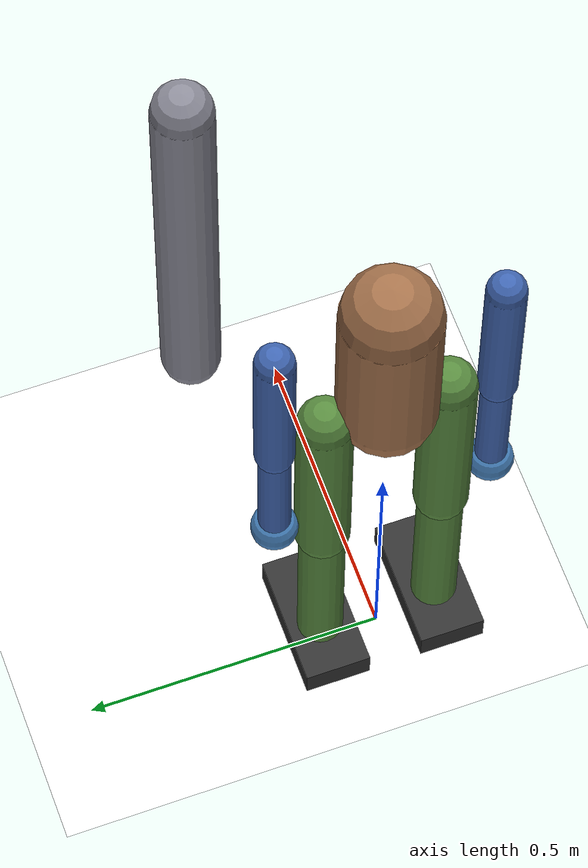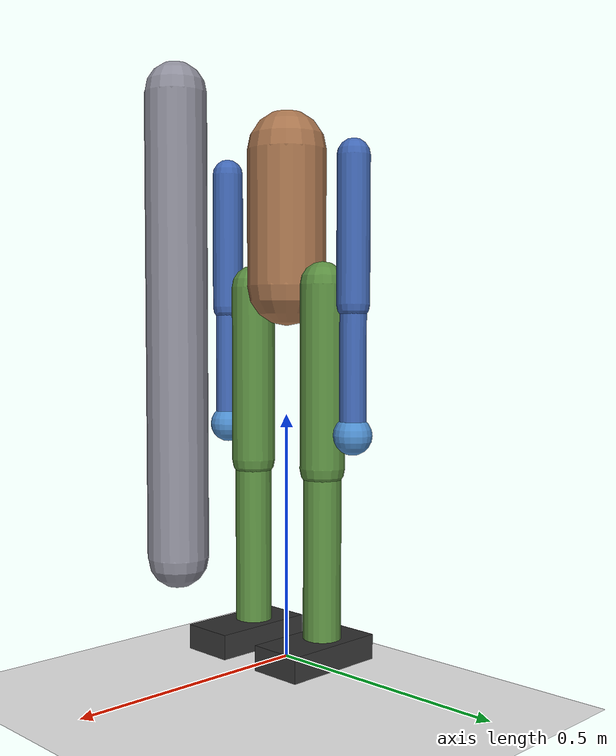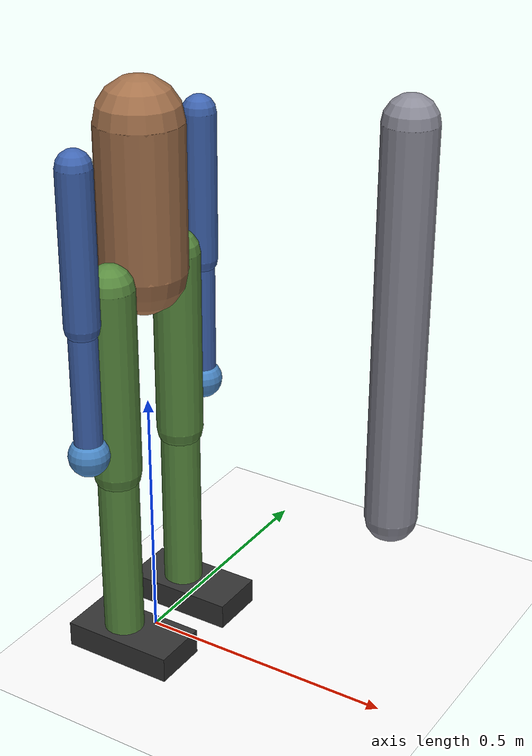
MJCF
<mujoco model="wbc_biped_brace">
  <compiler angle="radian" autolimits="true"/>
  <option timestep="0.0005" gravity="0 0 -9.81" iterations="50" tolerance="1e-10"/>

  <default>
    <joint damping="1.5" armature="0.01" frictionloss="0.1"/>
    <geom contype="1" conaffinity="1" friction="0.9 0.005 0.0001" condim="3"/>
    <motor ctrllimited="true"/>
  </default>

  <asset>
    <texture name="checker" type="2d" builtin="checker" width="512" height="512"
             rgb1="0.15 0.2 0.25" rgb2="0.25 0.3 0.35"/>
    <material name="floor_mat" texture="checker" texrepeat="6 6" texuniform="true" reflectance="0.2"/>
    <material name="torso_mat" rgba="0.65 0.45 0.30 1"/>
    <material name="leg_mat"   rgba="0.35 0.55 0.25 1"/>
    <material name="arm_mat"   rgba="0.25 0.40 0.70 1"/>
    <material name="foot_mat"  rgba="0.20 0.20 0.20 1"/>
    <material name="hand_mat"  rgba="0.30 0.55 0.80 1"/>
    <material name="rail_mat"  rgba="0.55 0.55 0.60 1"/>
  </asset>

  <worldbody>
    <light pos="0 0 4" dir="0 0 -1" diffuse="0.9 0.9 0.9" specular="0.2 0.2 0.2"/>
    <light pos="2 -2 3" dir="-1 1 -1" diffuse="0.4 0.4 0.4"/>
    <geom name="floor" type="plane" size="8 8 0.1" material="floor_mat" rgba="1 1 1 1"/>

    <!-- Fixed vertical bracing rail in front-left, within reach of the left hand -->
    <geom name="rail" type="capsule" fromto="0.42 0.175 0.30 0.42 0.175 1.05"
          size="0.05" material="rail_mat"/>

    <!-- ===== TORSO (floating base) ===== -->
    <body name="torso" pos="0 0 0.88">
      <freejoint name="root"/>
      <geom name="torso_geom" type="capsule" fromto="0 0 -0.12 0 0 0.15"
            size="0.08" material="torso_mat" mass="28"/>
      <site name="torso_imu" pos="0 0 0" size="0.01"/>
      <site name="com_site"  pos="0 0 0" size="0.01"/>

      <!-- ===== LEFT LEG ===== -->
      <body name="left_thigh" pos="0 0.10 -0.12">
        <joint name="left_hip_x" type="hinge" axis="1 0 0" range="-0.5 0.5" damping="3.0"/>
        <joint name="left_hip_y" type="hinge" axis="0 1 0" range="-1.0 0.6" damping="3.0"/>
        <geom name="left_thigh_geom" type="capsule" fromto="0 0 0 0 0 -0.36" size="0.045" material="leg_mat" mass="4.0"/>
        <body name="left_shank" pos="0 0 -0.36">
          <joint name="left_knee_y" type="hinge" axis="0 1 0" range="0.0 2.0" damping="3.0"/>
          <geom name="left_shank_geom" type="capsule" fromto="0 0 0 0 0 -0.34" size="0.038" material="leg_mat" mass="3.0"/>
          <body name="left_foot" pos="0 0 -0.34">
            <joint name="left_ankle_y" type="hinge" axis="0 1 0" range="-0.6 0.6" damping="1.5"/>
            <geom name="left_foot_geom" type="box" size="0.11 0.055 0.025" pos="0.02 0 -0.025" material="foot_mat" mass="0.5"/>
            <site name="left_foot_contact" pos="0.02 0 -0.05"/>
          </body>
        </body>
      </body>

      <!-- ===== RIGHT LEG ===== -->
      <body name="right_thigh" pos="0 -0.10 -0.12">
        <joint name="right_hip_x" type="hinge" axis="1 0 0" range="-0.5 0.5" damping="3.0"/>
        <joint name="right_hip_y" type="hinge" axis="0 1 0" range="-1.0 0.6" damping="3.0"/>
        <geom name="right_thigh_geom" type="capsule" fromto="0 0 0 0 0 -0.36" size="0.045" material="leg_mat" mass="4.0"/>
        <body name="right_shank" pos="0 0 -0.36">
          <joint name="right_knee_y" type="hinge" axis="0 1 0" range="0.0 2.0" damping="3.0"/>
          <geom name="right_shank_geom" type="capsule" fromto="0 0 0 0 0 -0.34" size="0.038" material="leg_mat" mass="3.0"/>
          <body name="right_foot" pos="0 0 -0.34">
            <joint name="right_ankle_y" type="hinge" axis="0 1 0" range="-0.6 0.6" damping="1.5"/>
            <geom name="right_foot_geom" type="box" size="0.11 0.055 0.025" pos="0.02 0 -0.025" material="foot_mat" mass="0.5"/>
            <site name="right_foot_contact" pos="0.02 0 -0.05"/>
          </body>
        </body>
      </body>

      <!-- ===== RIGHT ARM (task / pHRI) ===== -->
      <body name="right_upper_arm" pos="0 -0.18 0.12">
        <joint name="right_shoulder_x" type="hinge" axis="1 0 0" range="-1.6 1.6" damping="1.5"/>
        <joint name="right_shoulder_y" type="hinge" axis="0 1 0" range="-2.0 2.0" damping="1.5"/>
        <geom name="right_upper_arm_geom" type="capsule" fromto="0 0 0 0 0 -0.28" size="0.032" material="arm_mat" mass="1.8"/>
        <body name="right_forearm" pos="0 0 -0.28">
          <joint name="right_elbow_y" type="hinge" axis="0 1 0" range="-2.4 0.0" damping="1.0"/>
          <geom name="right_forearm_geom" type="capsule" fromto="0 0 0 0 0 -0.25" size="0.026" material="arm_mat" mass="1.0"/>
          <body name="right_hand" pos="0 0 -0.25">
            <geom name="right_hand_geom" type="sphere" size="0.038" material="hand_mat" mass="0.3"/>
            <site name="right_hand_site" pos="0 0 0" size="0.015" rgba="1 0.3 0.3 1"/>
          </body>
        </body>
      </body>

      <!-- ===== LEFT ARM (bracing) ===== -->
      <body name="left_upper_arm" pos="0 0.18 0.12">
        <joint name="left_shoulder_x" type="hinge" axis="1 0 0" range="-1.6 1.6" damping="1.5"/>
        <joint name="left_shoulder_y" type="hinge" axis="0 1 0" range="-2.0 2.0" damping="1.5"/>
        <geom name="left_upper_arm_geom" type="capsule" fromto="0 0 0 0 0 -0.28" size="0.032" material="arm_mat" mass="1.8"/>
        <body name="left_forearm" pos="0 0 -0.28">
          <joint name="left_elbow_y" type="hinge" axis="0 1 0" range="-2.4 0.0" damping="1.0"/>
          <geom name="left_forearm_geom" type="capsule" fromto="0 0 0 0 0 -0.25" size="0.026" material="arm_mat" mass="1.0"/>
          <body name="left_hand" pos="0 0 -0.25">
            <geom name="left_hand_geom" type="sphere" size="0.038" material="hand_mat" mass="0.3"/>
            <site name="left_hand_site" pos="0 0 0" size="0.015" rgba="0.3 0.5 1 1"/>
          </body>
        </body>
      </body>

    </body><!-- torso -->
  </worldbody>

  <actuator>
    <motor name="left_hip_x"       joint="left_hip_x"       gear="1" ctrlrange="-120 120"/>
    <motor name="left_hip_y"       joint="left_hip_y"       gear="1" ctrlrange="-200 200"/>
    <motor name="left_knee_y"      joint="left_knee_y"      gear="1" ctrlrange="-200 200"/>
    <motor name="left_ankle_y"     joint="left_ankle_y"     gear="1" ctrlrange="-100 100"/>
    <motor name="right_hip_x"      joint="right_hip_x"      gear="1" ctrlrange="-120 120"/>
    <motor name="right_hip_y"      joint="right_hip_y"      gear="1" ctrlrange="-200 200"/>
    <motor name="right_knee_y"     joint="right_knee_y"     gear="1" ctrlrange="-200 200"/>
    <motor name="right_ankle_y"    joint="right_ankle_y"    gear="1" ctrlrange="-100 100"/>
    <motor name="right_shoulder_x" joint="right_shoulder_x" gear="1" ctrlrange="-80 80"/>
    <motor name="right_shoulder_y" joint="right_shoulder_y" gear="1" ctrlrange="-80 80"/>
    <motor name="right_elbow_y"    joint="right_elbow_y"    gear="1" ctrlrange="-60 60"/>
    <motor name="left_shoulder_x"  joint="left_shoulder_x"  gear="1" ctrlrange="-80 80"/>
    <motor name="left_shoulder_y"  joint="left_shoulder_y"  gear="1" ctrlrange="-80 80"/>
    <motor name="left_elbow_y"     joint="left_elbow_y"     gear="1" ctrlrange="-60 60"/>
  </actuator>

  <keyframe>
    <!-- root(7) + leftleg(4) + rightleg(4) + rightarm(3) + leftarm(3) -->
    <key name="stand"
         qpos="0 0 0.88  1 0 0 0
               0 -0.05  0.10 -0.05
               0 -0.05  0.10 -0.05
               0  0.5  -1.0
               0  0.5  -1.0"
         qvel="0 0 0 0 0 0
               0 0 0 0
               0 0 0 0
               0 0 0
               0 0 0"/>
  </keyframe>

</mujoco>
